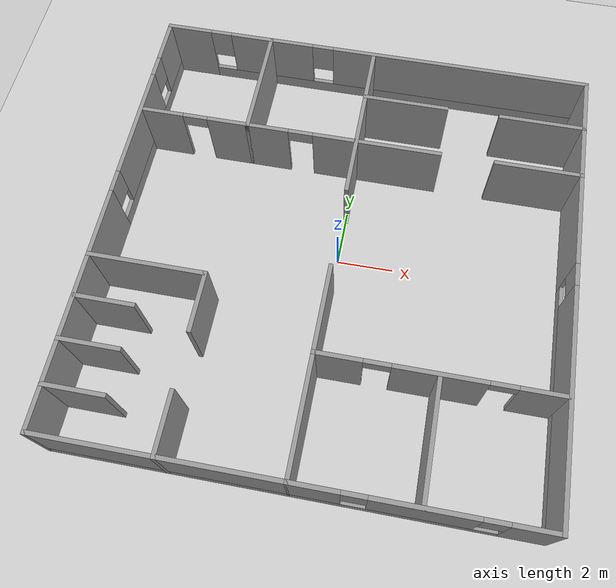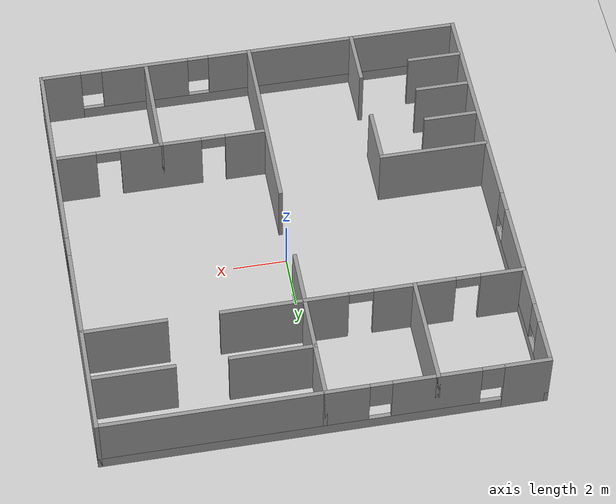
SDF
<sdf version="1.6">
 <world name="default">
  <light name="sun" type="directional">
   <pose>0 0 10 0 -0 0</pose>
   <diffuse>0.8 0.8 0.8 1</diffuse>
   <specular>0.1 0.1 0.1 1</specular>
   <attenuation>
    <range>1000</range>
    <constant>0.9</constant>
    <linear>0.01</linear>
    <quadratic>0.001</quadratic>
   </attenuation>
   <direction>-0.5 0.5 -1</direction>
  </light>
  <model name="ground_plane">
   <static>1</static>
   <link name="link">
    <collision name="collision">
     <geometry><plane><normal>0 0 1</normal><size>100 100</size></plane></geometry>
     <surface><friction><ode><mu>100</mu><mu2>50</mu2></ode></friction></surface>
    </collision>
    <visual name="visual">
     <cast_shadows>0</cast_shadows>
     <geometry><plane><normal>0 0 1</normal><size>100 100</size></plane></geometry>
     <material>
      <script><uri>file://media/materials/scripts/gazebo.material</uri><name>Gazebo/Grey</name></script>
     </material>
    </visual>
   </link>
  </model>
  <gravity>0 0 -9.8</gravity>
  <magnetic_field>6e-06 2.3e-05 -4.2e-05</magnetic_field>
  <atmosphere type="adiabatic"/>
  <physics name="default_physics" default="0" type="ode">
   <max_step_size>0.001</max_step_size>
   <real_time_factor>1</real_time_factor>
   <real_time_update_rate>1000</real_time_update_rate>
  </physics>
  <scene><ambient>0.4 0.4 0.4 1</ambient><background>0.7 0.7 0.7 1</background><shadows>1</shadows></scene>
  <spherical_coordinates>
   <surface_model>EARTH_WGS84</surface_model>
   <latitude_deg>0</latitude_deg>
   <longitude_deg>0</longitude_deg>
   <elevation>0</elevation>
   <heading_deg>0</heading_deg>
  </spherical_coordinates>
  <model name="warehouse">
   <pose>-0.009742 -0.330045 0 0 -0 0</pose>
   <link name="Wall_0">
    <pose>0 8 0 0 -0 0</pose>
    <visual name="Wall_0_Visual_0">
     <pose>-7.22039 0 1.25 0 -0 0</pose>
     <geometry><box><size>1.70922 0.15 2.5</size></box></geometry>
     <material>
      <script><uri>file://media/materials/scripts/gazebo.material</uri><name>Gazebo/Grey</name></script>
      <ambient>0.368627 0.368627 0.368627 1</ambient>
     </material>
    </visual>
    <collision name="Wall_0_Collision_0">
     <geometry><box><size>1.70922 0.15 2.5</size></box></geometry>
     <pose>-7.22039 0 1.25 0 -0 0</pose>
    </collision>
    <visual name="Wall_0_Visual_1">
     <pose>0.854609 0 0.25 0 -0 0</pose>
     <geometry><box><size>14.4408 0.15 0.5</size></box></geometry>
     <material>
      <script><uri>file://media/materials/scripts/gazebo.material</uri><name>Gazebo/Grey</name></script>
      <ambient>0.368627 0.368627 0.368627 1</ambient>
     </material>
    </visual>
    <collision name="Wall_0_Collision_1">
     <geometry><box><size>14.4408 0.15 0.5</size></box></geometry>
     <pose>0.854609 0 0.25 0 -0 0</pose>
    </collision>
    <visual name="Wall_0_Visual_2">
     <pose>-3.96881 0 1.5 0 -0 0</pose>
     <geometry><box><size>3.19395 0.15 2</size></box></geometry>
     <material>
      <script><uri>file://media/materials/scripts/gazebo.material</uri><name>Gazebo/Grey</name></script>
      <ambient>0.368627 0.368627 0.368627 1</ambient>
     </material>
    </visual>
    <collision name="Wall_0_Collision_2">
     <geometry><box><size>3.19395 0.15 2</size></box></geometry>
     <pose>-3.96881 0 1.5 0 -0 0</pose>
    </collision>
    <visual name="Wall_0_Visual_3">
     <pose>3.25158 0 1.5 0 -0 0</pose>
     <geometry><box><size>9.64683 0.15 2</size></box></geometry>
     <material>
      <script><uri>file://media/materials/scripts/gazebo.material</uri><name>Gazebo/Grey</name></script>
      <ambient>0.368627 0.368627 0.368627 1</ambient>
     </material>
    </visual>
    <collision name="Wall_0_Collision_3">
     <geometry><box><size>9.64683 0.15 2</size></box></geometry>
     <pose>3.25158 0 1.5 0 -0 0</pose>
    </collision>
    <visual name="Wall_0_Visual_4">
     <pose>-5.96578 0 1.9 0 -0 0</pose>
     <geometry><box><size>0.8 0.15 1.2</size></box></geometry>
     <material>
      <script><uri>file://media/materials/scripts/gazebo.material</uri><name>Gazebo/Grey</name></script>
      <ambient>0.368627 0.368627 0.368627 1</ambient>
     </material>
    </visual>
    <collision name="Wall_0_Collision_4">
     <geometry><box><size>0.8 0.15 1.2</size></box></geometry>
     <pose>-5.96578 0 1.9 0 -0 0</pose>
    </collision>
    <visual name="Wall_0_Visual_5">
     <pose>-1.97183 0 1.9 0 -0 0</pose>
     <geometry><box><size>0.8 0.15 1.2</size></box></geometry>
     <material>
      <script><uri>file://media/materials/scripts/gazebo.material</uri><name>Gazebo/Grey</name></script>
      <ambient>0.368627 0.368627 0.368627 1</ambient>
     </material>
    </visual>
    <collision name="Wall_0_Collision_5">
     <geometry><box><size>0.8 0.15 1.2</size></box></geometry>
     <pose>-1.97183 0 1.9 0 -0 0</pose>
    </collision>
   </link>
   <link name="Wall_1">
    <pose>8 0 0 0 0 -1.5708</pose>
    <visual name="Wall_1_Visual_0">
     <pose>-4.3128 0 1.25 0 -0 0</pose>
     <geometry><box><size>7.5244 0.15 2.5</size></box></geometry>
     <material>
      <script><uri>file://media/materials/scripts/gazebo.material</uri><name>Gazebo/Grey</name></script>
      <ambient>0.368627 0.368627 0.368627 1</ambient>
     </material>
    </visual>
    <collision name="Wall_1_Collision_0">
     <geometry><box><size>7.5244 0.15 2.5</size></box></geometry>
     <pose>-4.3128 0 1.25 0 -0 0</pose>
    </collision>
    <visual name="Wall_1_Visual_1">
     <pose>3.7622 0 0.25 0 -0 0</pose>
     <geometry><box><size>8.6256 0.15 0.5</size></box></geometry>
     <material>
      <script><uri>file://media/materials/scripts/gazebo.material</uri><name>Gazebo/Grey</name></script>
      <ambient>0.368627 0.368627 0.368627 1</ambient>
     </material>
    </visual>
    <collision name="Wall_1_Collision_1">
     <geometry><box><size>8.6256 0.15 0.5</size></box></geometry>
     <pose>3.7622 0 0.25 0 -0 0</pose>
    </collision>
    <visual name="Wall_1_Visual_2">
     <pose>4.1622 0 1.5 0 -0 0</pose>
     <geometry><box><size>7.8256 0.15 2</size></box></geometry>
     <material>
      <script><uri>file://media/materials/scripts/gazebo.material</uri><name>Gazebo/Grey</name></script>
      <ambient>0.368627 0.368627 0.368627 1</ambient>
     </material>
    </visual>
    <collision name="Wall_1_Collision_2">
     <geometry><box><size>7.8256 0.15 2</size></box></geometry>
     <pose>4.1622 0 1.5 0 -0 0</pose>
    </collision>
    <visual name="Wall_1_Visual_3">
     <pose>-0.150603 0 1.9 0 -0 0</pose>
     <geometry><box><size>0.8 0.15 1.2</size></box></geometry>
     <material>
      <script><uri>file://media/materials/scripts/gazebo.material</uri><name>Gazebo/Grey</name></script>
      <ambient>0.368627 0.368627 0.368627 1</ambient>
     </material>
    </visual>
    <collision name="Wall_1_Collision_3">
     <geometry><box><size>0.8 0.15 1.2</size></box></geometry>
     <pose>-0.150603 0 1.9 0 -0 0</pose>
    </collision>
   </link>
   <link name="Wall_11">
    <pose>4 -4 0 0 -0 0</pose>
    <visual name="Wall_11_Visual_0">
     <pose>-3.24813 0 1.25 0 -0 0</pose>
     <geometry><box><size>1.65375 0.15 2.5</size></box></geometry>
     <material>
      <script><uri>file://media/materials/scripts/gazebo.material</uri><name>Gazebo/Grey</name></script>
      <ambient>0.368627 0.368627 0.368627 1</ambient>
     </material>
    </visual>
    <collision name="Wall_11_Collision_0">
     <geometry><box><size>1.65375 0.15 2.5</size></box></geometry>
     <pose>-3.24813 0 1.25 0 -0 0</pose>
    </collision>
    <visual name="Wall_11_Visual_1">
     <pose>0.008749 0 1.25 0 -0 0</pose>
     <geometry><box><size>3.06 0.15 2.5</size></box></geometry>
     <material>
      <script><uri>file://media/materials/scripts/gazebo.material</uri><name>Gazebo/Grey</name></script>
      <ambient>0.368627 0.368627 0.368627 1</ambient>
     </material>
    </visual>
    <collision name="Wall_11_Collision_1">
     <geometry><box><size>3.06 0.15 2.5</size></box></geometry>
     <pose>0.008749 0 1.25 0 -0 0</pose>
    </collision>
    <visual name="Wall_11_Visual_2">
     <pose>3.25687 0 1.25 0 -0 0</pose>
     <geometry><box><size>1.63625 0.15 2.5</size></box></geometry>
     <material>
      <script><uri>file://media/materials/scripts/gazebo.material</uri><name>Gazebo/Grey</name></script>
      <ambient>0.368627 0.368627 0.368627 1</ambient>
     </material>
    </visual>
    <collision name="Wall_11_Collision_2">
     <geometry><box><size>1.63625 0.15 2.5</size></box></geometry>
     <pose>3.25687 0 1.25 0 -0 0</pose>
    </collision>
    <visual name="Wall_11_Visual_3">
     <pose>-1.97125 0 2.25 0 -0 0</pose>
     <geometry><box><size>0.9 0.15 0.5</size></box></geometry>
     <material>
      <script><uri>file://media/materials/scripts/gazebo.material</uri><name>Gazebo/Grey</name></script>
      <ambient>0.368627 0.368627 0.368627 1</ambient>
     </material>
    </visual>
    <collision name="Wall_11_Collision_3">
     <geometry><box><size>0.9 0.15 0.5</size></box></geometry>
     <pose>-1.97125 0 2.25 0 -0 0</pose>
    </collision>
    <visual name="Wall_11_Visual_4">
     <pose>1.98875 0 2.25 0 -0 0</pose>
     <geometry><box><size>0.9 0.15 0.5</size></box></geometry>
     <material>
      <script><uri>file://media/materials/scripts/gazebo.material</uri><name>Gazebo/Grey</name></script>
      <ambient>0.368627 0.368627 0.368627 1</ambient>
     </material>
    </visual>
    <collision name="Wall_11_Collision_4">
     <geometry><box><size>0.9 0.15 0.5</size></box></geometry>
     <pose>1.98875 0 2.25 0 -0 0</pose>
    </collision>
   </link>
   <link name="Wall_13">
    <collision name="Wall_13_Collision">
     <geometry><box><size>4.15 0.15 2.5</size></box></geometry>
     <pose>0 0 1.25 0 -0 0</pose>
    </collision>
    <visual name="Wall_13_Visual">
     <pose>0 0 1.25 0 -0 0</pose>
     <geometry><box><size>4.15 0.15 2.5</size></box></geometry>
     <material>
      <script><uri>file://media/materials/scripts/gazebo.material</uri><name>Gazebo/Grey</name></script>
      <ambient>0.368627 0.368627 0.368627 1</ambient>
     </material>
    </visual>
    <pose>-4 6 0 0 -0 1.5708</pose>
   </link>
   <link name="Wall_15">
    <collision name="Wall_15_Collision">
     <geometry><box><size>4.15 0.15 2.5</size></box></geometry>
     <pose>0 0 1.25 0 -0 0</pose>
    </collision>
    <visual name="Wall_15_Visual">
     <pose>0 0 1.25 0 -0 0</pose>
     <geometry><box><size>4.15 0.15 2.5</size></box></geometry>
     <material>
      <script><uri>file://media/materials/scripts/gazebo.material</uri><name>Gazebo/Grey</name></script>
      <ambient>0.368627 0.368627 0.368627 1</ambient>
     </material>
    </visual>
    <pose>4 -6 0 0 0 -1.5708</pose>
   </link>
   <link name="Wall_2">
    <pose>0 -8 0 0 -0 3.14159</pose>
    <visual name="Wall_2_Visual_0">
     <pose>-7.29256 0 1.25 0 -0 0</pose>
     <geometry><box><size>1.56488 0.15 2.5</size></box></geometry>
     <material>
      <script><uri>file://media/materials/scripts/gazebo.material</uri><name>Gazebo/Grey</name></script>
      <ambient>0.368627 0.368627 0.368627 1</ambient>
     </material>
    </visual>
    <collision name="Wall_2_Collision_0">
     <geometry><box><size>1.56488 0.15 2.5</size></box></geometry>
     <pose>-7.29256 0 1.25 0 -0 0</pose>
    </collision>
    <visual name="Wall_2_Visual_1">
     <pose>0.78244 0 0.25 0 -0 0</pose>
     <geometry><box><size>14.5851 0.15 0.5</size></box></geometry>
     <material>
      <script><uri>file://media/materials/scripts/gazebo.material</uri><name>Gazebo/Grey</name></script>
      <ambient>0.368627 0.368627 0.368627 1</ambient>
     </material>
    </visual>
    <collision name="Wall_2_Collision_1">
     <geometry><box><size>14.5851 0.15 0.5</size></box></geometry>
     <pose>0.78244 0 0.25 0 -0 0</pose>
    </collision>
    <visual name="Wall_2_Visual_2">
     <pose>-4.05064 0 1.5 0 -0 0</pose>
     <geometry><box><size>3.31896 0.15 2</size></box></geometry>
     <material>
      <script><uri>file://media/materials/scripts/gazebo.material</uri><name>Gazebo/Grey</name></script>
      <ambient>0.368627 0.368627 0.368627 1</ambient>
     </material>
    </visual>
    <collision name="Wall_2_Collision_2">
     <geometry><box><size>3.31896 0.15 2</size></box></geometry>
     <pose>-4.05064 0 1.5 0 -0 0</pose>
    </collision>
    <visual name="Wall_2_Visual_3">
     <pose>3.24192 0 1.5 0 -0 0</pose>
     <geometry><box><size>9.66616 0.15 2</size></box></geometry>
     <material>
      <script><uri>file://media/materials/scripts/gazebo.material</uri><name>Gazebo/Grey</name></script>
      <ambient>0.368627 0.368627 0.368627 1</ambient>
     </material>
    </visual>
    <collision name="Wall_2_Collision_3">
     <geometry><box><size>9.66616 0.15 2</size></box></geometry>
     <pose>3.24192 0 1.5 0 -0 0</pose>
    </collision>
    <visual name="Wall_2_Visual_4">
     <pose>-6.11012 0 1.9 0 -0 0</pose>
     <geometry><box><size>0.8 0.15 1.2</size></box></geometry>
     <material>
      <script><uri>file://media/materials/scripts/gazebo.material</uri><name>Gazebo/Grey</name></script>
      <ambient>0.368627 0.368627 0.368627 1</ambient>
     </material>
    </visual>
    <collision name="Wall_2_Collision_4">
     <geometry><box><size>0.8 0.15 1.2</size></box></geometry>
     <pose>-6.11012 0 1.9 0 -0 0</pose>
    </collision>
    <visual name="Wall_2_Visual_5">
     <pose>-1.99116 0 1.9 0 -0 0</pose>
     <geometry><box><size>0.8 0.15 1.2</size></box></geometry>
     <material>
      <script><uri>file://media/materials/scripts/gazebo.material</uri><name>Gazebo/Grey</name></script>
      <ambient>0.368627 0.368627 0.368627 1</ambient>
     </material>
    </visual>
    <collision name="Wall_2_Collision_5">
     <geometry><box><size>0.8 0.15 1.2</size></box></geometry>
     <pose>-1.99116 0 1.9 0 -0 0</pose>
    </collision>
   </link>
   <link name="Wall_24">
    <collision name="Wall_24_Collision">
     <geometry><box><size>4.15 0.15 2.5</size></box></geometry>
     <pose>0 0 1.25 0 -0 0</pose>
    </collision>
    <visual name="Wall_24_Visual">
     <pose>0 0 1.25 0 -0 0</pose>
     <geometry><box><size>4.15 0.15 2.5</size></box></geometry>
     <material>
      <script><uri>file://media/materials/scripts/gazebo.material</uri><name>Gazebo/Grey</name></script>
      <ambient>0.368627 0.368627 0.368627 1</ambient>
     </material>
    </visual>
    <pose>-6 -2 0 0 -0 0</pose>
   </link>
   <link name="Wall_25">
    <collision name="Wall_25_Collision">
     <geometry><box><size>2.15 0.15 2.5</size></box></geometry>
     <pose>0 0 1.25 0 -0 0</pose>
    </collision>
    <visual name="Wall_25_Visual">
     <pose>0 0 1.25 0 -0 0</pose>
     <geometry><box><size>2.15 0.15 2.5</size></box></geometry>
     <material>
      <script><uri>file://media/materials/scripts/gazebo.material</uri><name>Gazebo/Grey</name></script>
      <ambient>0.368627 0.368627 0.368627 1</ambient>
     </material>
    </visual>
    <pose>-4 -3 0 0 0 -1.5708</pose>
   </link>
   <link name="Wall_27">
    <collision name="Wall_27_Collision">
     <geometry><box><size>2.15 0.15 2.5</size></box></geometry>
     <pose>0 0 1.25 0 -0 0</pose>
    </collision>
    <visual name="Wall_27_Visual">
     <pose>0 0 1.25 0 -0 0</pose>
     <geometry><box><size>2.15 0.15 2.5</size></box></geometry>
     <material>
      <script><uri>file://media/materials/scripts/gazebo.material</uri><name>Gazebo/Grey</name></script>
      <ambient>0.368627 0.368627 0.368627 1</ambient>
     </material>
    </visual>
    <pose>-7 -6.5 0 0 -0 0</pose>
   </link>
   <link name="Wall_29">
    <collision name="Wall_29_Collision">
     <geometry><box><size>2.15 0.15 2.5</size></box></geometry>
     <pose>0 0 1.25 0 -0 0</pose>
    </collision>
    <visual name="Wall_29_Visual">
     <pose>0 0 1.25 0 -0 0</pose>
     <geometry><box><size>2.15 0.15 2.5</size></box></geometry>
     <material>
      <script><uri>file://media/materials/scripts/gazebo.material</uri><name>Gazebo/Grey</name></script>
      <ambient>0.368627 0.368627 0.368627 1</ambient>
     </material>
    </visual>
    <pose>-7 -5 0 0 -0 0</pose>
   </link>
   <link name="Wall_3">
    <pose>-8 0 0 0 -0 1.5708</pose>
    <visual name="Wall_3_Visual_0">
     <pose>-3.80915 0 1.25 0 -0 0</pose>
     <geometry><box><size>8.53171 0.15 2.5</size></box></geometry>
     <material>
      <script><uri>file://media/materials/scripts/gazebo.material</uri><name>Gazebo/Grey</name></script>
      <ambient>0.368627 0.368627 0.368627 1</ambient>
     </material>
    </visual>
    <collision name="Wall_3_Collision_0">
     <geometry><box><size>8.53171 0.15 2.5</size></box></geometry>
     <pose>-3.80915 0 1.25 0 -0 0</pose>
    </collision>
    <visual name="Wall_3_Visual_1">
     <pose>4.26586 0 0.25 0 -0 0</pose>
     <geometry><box><size>7.61829 0.15 0.5</size></box></geometry>
     <material>
      <script><uri>file://media/materials/scripts/gazebo.material</uri><name>Gazebo/Grey</name></script>
      <ambient>0.368627 0.368627 0.368627 1</ambient>
     </material>
    </visual>
    <collision name="Wall_3_Collision_1">
     <geometry><box><size>7.61829 0.15 0.5</size></box></geometry>
     <pose>4.26586 0 0.25 0 -0 0</pose>
    </collision>
    <visual name="Wall_3_Visual_2">
     <pose>3.41639 0 1.5 0 -0 0</pose>
     <geometry><box><size>4.31936 0.15 2</size></box></geometry>
     <material>
      <script><uri>file://media/materials/scripts/gazebo.material</uri><name>Gazebo/Grey</name></script>
      <ambient>0.368627 0.368627 0.368627 1</ambient>
     </material>
    </visual>
    <collision name="Wall_3_Collision_2">
     <geometry><box><size>4.31936 0.15 2</size></box></geometry>
     <pose>3.41639 0 1.5 0 -0 0</pose>
    </collision>
    <visual name="Wall_3_Visual_3">
     <pose>7.22553 0 1.5 0 -0 0</pose>
     <geometry><box><size>1.69893 0.15 2</size></box></geometry>
     <material>
      <script><uri>file://media/materials/scripts/gazebo.material</uri><name>Gazebo/Grey</name></script>
      <ambient>0.368627 0.368627 0.368627 1</ambient>
     </material>
    </visual>
    <collision name="Wall_3_Collision_3">
     <geometry><box><size>1.69893 0.15 2</size></box></geometry>
     <pose>7.22553 0 1.5 0 -0 0</pose>
    </collision>
    <visual name="Wall_3_Visual_4">
     <pose>0.856711 0 1.9 0 -0 0</pose>
     <geometry><box><size>0.8 0.15 1.2</size></box></geometry>
     <material>
      <script><uri>file://media/materials/scripts/gazebo.material</uri><name>Gazebo/Grey</name></script>
      <ambient>0.368627 0.368627 0.368627 1</ambient>
     </material>
    </visual>
    <collision name="Wall_3_Collision_4">
     <geometry><box><size>0.8 0.15 1.2</size></box></geometry>
     <pose>0.856711 0 1.9 0 -0 0</pose>
    </collision>
    <visual name="Wall_3_Visual_5">
     <pose>5.97607 0 1.9 0 -0 0</pose>
     <geometry><box><size>0.8 0.15 1.2</size></box></geometry>
     <material>
      <script><uri>file://media/materials/scripts/gazebo.material</uri><name>Gazebo/Grey</name></script>
      <ambient>0.368627 0.368627 0.368627 1</ambient>
     </material>
    </visual>
    <collision name="Wall_3_Collision_5">
     <geometry><box><size>0.8 0.15 1.2</size></box></geometry>
     <pose>5.97607 0 1.9 0 -0 0</pose>
    </collision>
   </link>
   <link name="Wall_31">
    <collision name="Wall_31_Collision">
     <geometry><box><size>2.15 0.15 2.5</size></box></geometry>
     <pose>0 0 1.25 0 -0 0</pose>
    </collision>
    <visual name="Wall_31_Visual">
     <pose>0 0 1.25 0 -0 0</pose>
     <geometry><box><size>2.15 0.15 2.5</size></box></geometry>
     <material>
      <script><uri>file://media/materials/scripts/gazebo.material</uri><name>Gazebo/Grey</name></script>
      <ambient>0.368627 0.368627 0.368627 1</ambient>
     </material>
    </visual>
    <pose>-7 -3.5 0 0 -0 0</pose>
   </link>
   <link name="Wall_33">
    <collision name="Wall_33_Collision">
     <geometry><box><size>2.15 0.15 2.5</size></box></geometry>
     <pose>0 0 1.25 0 -0 0</pose>
    </collision>
    <visual name="Wall_33_Visual">
     <pose>0 0 1.25 0 -0 0</pose>
     <geometry><box><size>2.15 0.15 2.5</size></box></geometry>
     <material>
      <script><uri>file://media/materials/scripts/gazebo.material</uri><name>Gazebo/Grey</name></script>
      <ambient>0.368627 0.368627 0.368627 1</ambient>
     </material>
    </visual>
    <pose>-4 -7 0 0 0 -1.5708</pose>
   </link>
   <link name="Wall_36">
    <collision name="Wall_36_Collision">
     <geometry><box><size>3.15 0.15 2.5</size></box></geometry>
     <pose>0 0 1.25 0 -0 0</pose>
    </collision>
    <visual name="Wall_36_Visual">
     <pose>0 0 1.25 0 -0 0</pose>
     <geometry><box><size>3.15 0.15 2.5</size></box></geometry>
     <material>
      <script><uri>file://media/materials/scripts/gazebo.material</uri><name>Gazebo/Grey</name></script>
      <ambient>0.368627 0.368627 0.368627 1</ambient>
     </material>
    </visual>
    <pose>1.5 4 0 0 -0 0</pose>
   </link>
   <link name="Wall_38">
    <collision name="Wall_38_Collision">
     <geometry><box><size>3.15 0.15 2.5</size></box></geometry>
     <pose>0 0 1.25 0 -0 0</pose>
    </collision>
    <visual name="Wall_38_Visual">
     <pose>0 0 1.25 0 -0 0</pose>
     <geometry><box><size>3.15 0.15 2.5</size></box></geometry>
     <material>
      <script><uri>file://media/materials/scripts/gazebo.material</uri><name>Gazebo/Grey</name></script>
      <ambient>0.368627 0.368627 0.368627 1</ambient>
     </material>
    </visual>
    <pose>6.5 4 0 0 -0 0</pose>
   </link>
   <link name="Wall_40">
    <collision name="Wall_40_Collision">
     <geometry><box><size>3.15 0.15 2.5</size></box></geometry>
     <pose>0 0 1.25 0 -0 0</pose>
    </collision>
    <visual name="Wall_40_Visual">
     <pose>0 0 1.25 0 -0 0</pose>
     <geometry><box><size>3.15 0.15 2.5</size></box></geometry>
     <material>
      <script><uri>file://media/materials/scripts/gazebo.material</uri><name>Gazebo/Grey</name></script>
      <ambient>0.368627 0.368627 0.368627 1</ambient>
     </material>
    </visual>
    <pose>1.5 6 0 0 -0 0</pose>
   </link>
   <link name="Wall_42">
    <collision name="Wall_42_Collision">
     <geometry><box><size>3.15 0.15 2.5</size></box></geometry>
     <pose>0 0 1.25 0 -0 0</pose>
    </collision>
    <visual name="Wall_42_Visual">
     <pose>0 0 1.25 0 -0 0</pose>
     <geometry><box><size>3.15 0.15 2.5</size></box></geometry>
     <material>
      <script><uri>file://media/materials/scripts/gazebo.material</uri><name>Gazebo/Grey</name></script>
      <ambient>0.368627 0.368627 0.368627 1</ambient>
     </material>
    </visual>
    <pose>6.5 6 0 0 -0 0</pose>
   </link>
   <link name="Wall_5">
    <collision name="Wall_5_Collision">
     <geometry><box><size>6.15 0.15 2.5</size></box></geometry>
     <pose>0 0 1.25 0 -0 0</pose>
    </collision>
    <visual name="Wall_5_Visual">
     <pose>0 0 1.25 0 -0 0</pose>
     <geometry><box><size>6.15 0.15 2.5</size></box></geometry>
     <material>
      <script><uri>file://media/materials/scripts/gazebo.material</uri><name>Gazebo/Grey</name></script>
      <ambient>0.368627 0.368627 0.368627 1</ambient>
     </material>
    </visual>
    <pose>0 5 0 0 0 -1.5708</pose>
   </link>
   <link name="Wall_7">
    <collision name="Wall_7_Collision">
     <geometry><box><size>7.15 0.15 2.5</size></box></geometry>
     <pose>0 0 1.25 0 -0 0</pose>
    </collision>
    <visual name="Wall_7_Visual">
     <pose>0 0 1.25 0 -0 0</pose>
     <geometry><box><size>7.15 0.15 2.5</size></box></geometry>
     <material>
      <script><uri>file://media/materials/scripts/gazebo.material</uri><name>Gazebo/Grey</name></script>
      <ambient>0.368627 0.368627 0.368627 1</ambient>
     </material>
    </visual>
    <pose>0 -4.5 0 0 -0 1.5708</pose>
   </link>
   <link name="Wall_9">
    <pose>-4 4 0 0 -0 0</pose>
    <visual name="Wall_9_Visual_0">
     <pose>-3.23871 0 1.25 0 -0 0</pose>
     <geometry><box><size>1.67258 0.15 2.5</size></box></geometry>
     <material>
      <script><uri>file://media/materials/scripts/gazebo.material</uri><name>Gazebo/Grey</name></script>
      <ambient>0.368627 0.368627 0.368627 1</ambient>
     </material>
    </visual>
    <collision name="Wall_9_Collision_0">
     <geometry><box><size>1.67258 0.15 2.5</size></box></geometry>
     <pose>-3.23871 0 1.25 0 -0 0</pose>
    </collision>
    <visual name="Wall_9_Visual_1">
     <pose>0.002578 0 1.25 0 -0 0</pose>
     <geometry><box><size>3.01 0.15 2.5</size></box></geometry>
     <material>
      <script><uri>file://media/materials/scripts/gazebo.material</uri><name>Gazebo/Grey</name></script>
      <ambient>0.368627 0.368627 0.368627 1</ambient>
     </material>
    </visual>
    <collision name="Wall_9_Collision_1">
     <geometry><box><size>3.01 0.15 2.5</size></box></geometry>
     <pose>0.002578 0 1.25 0 -0 0</pose>
    </collision>
    <visual name="Wall_9_Visual_2">
     <pose>3.24129 0 1.25 0 -0 0</pose>
     <geometry><box><size>1.66742 0.15 2.5</size></box></geometry>
     <material>
      <script><uri>file://media/materials/scripts/gazebo.material</uri><name>Gazebo/Grey</name></script>
      <ambient>0.368627 0.368627 0.368627 1</ambient>
     </material>
    </visual>
    <collision name="Wall_9_Collision_2">
     <geometry><box><size>1.66742 0.15 2.5</size></box></geometry>
     <pose>3.24129 0 1.25 0 -0 0</pose>
    </collision>
    <visual name="Wall_9_Visual_3">
     <pose>-1.95242 0 2.25 0 -0 0</pose>
     <geometry><box><size>0.9 0.15 0.5</size></box></geometry>
     <material>
      <script><uri>file://media/materials/scripts/gazebo.material</uri><name>Gazebo/Grey</name></script>
      <ambient>0.368627 0.368627 0.368627 1</ambient>
     </material>
    </visual>
    <collision name="Wall_9_Collision_3">
     <geometry><box><size>0.9 0.15 0.5</size></box></geometry>
     <pose>-1.95242 0 2.25 0 -0 0</pose>
    </collision>
    <visual name="Wall_9_Visual_4">
     <pose>1.95758 0 2.25 0 -0 0</pose>
     <geometry><box><size>0.9 0.15 0.5</size></box></geometry>
     <material>
      <script><uri>file://media/materials/scripts/gazebo.material</uri><name>Gazebo/Grey</name></script>
      <ambient>0.368627 0.368627 0.368627 1</ambient>
     </material>
    </visual>
    <collision name="Wall_9_Collision_4">
     <geometry><box><size>0.9 0.15 0.5</size></box></geometry>
     <pose>1.95758 0 2.25 0 -0 0</pose>
    </collision>
   </link>
   <static>1</static>
  </model>
 </world>
</sdf>
